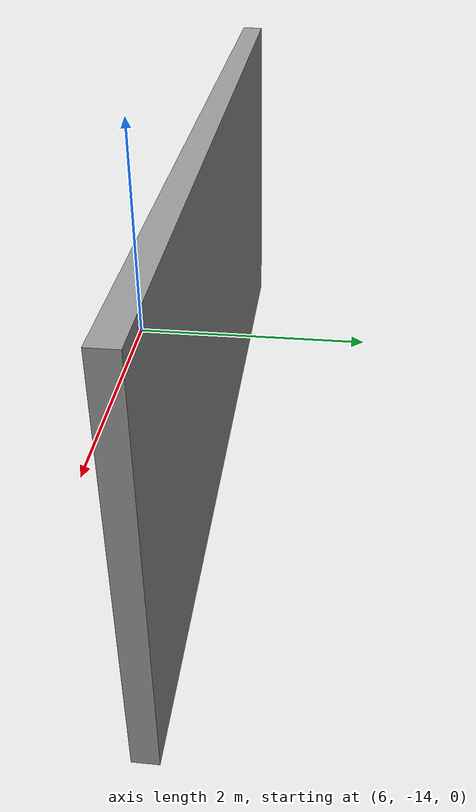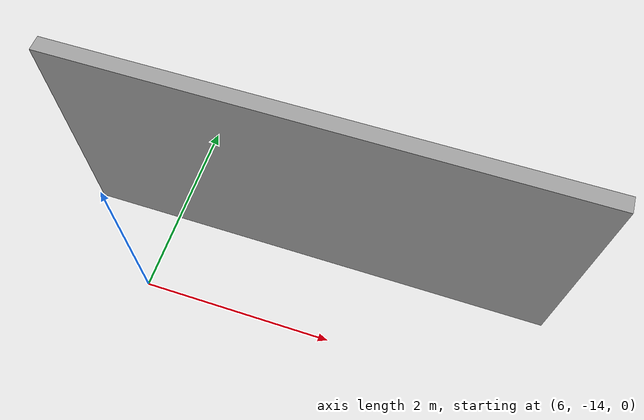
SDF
<?xml version='1.0'?>
<sdf version='1.7'>
  <model name='Blackwall'>
    <pose>5.0325 -6.5775 0 0 -0 0</pose>
    <link name='Wall_0'>
      <collision name='Wall_0_Collision'>
        <geometry>
          <box>
            <size>5 0.15 2.5</size>
          </box>
        </geometry>
        <pose>0 0 1.25 0 -0 0</pose>
      </collision>
      <visual name='Wall_0_Visual'>
        <pose>0 0 1.25 0 -0 0</pose>
        <geometry>
          <box>
            <size>5 0.15 2.5</size>
          </box>
        </geometry>
        <material>
          <script>
            <uri>file://media/materials/scripts/gazebo.material</uri>
            <name>Gazebo/Grey</name>
          </script>
          <ambient>0.180392 0.203922 0.211765 1</ambient>
        </material>
        <meta>
          <layer>0</layer>
        </meta>
      </visual>
      <pose>2.5325 -6.5025 0 0 -0 3.14159</pose>
    </link>
    <static>1</static>
  </model>
</sdf>
